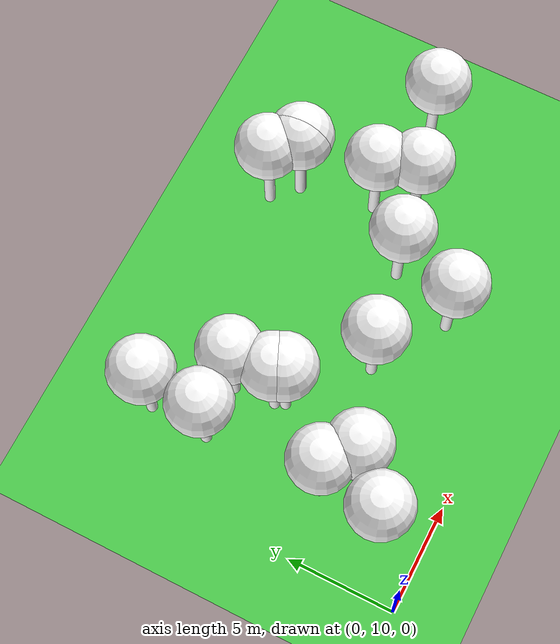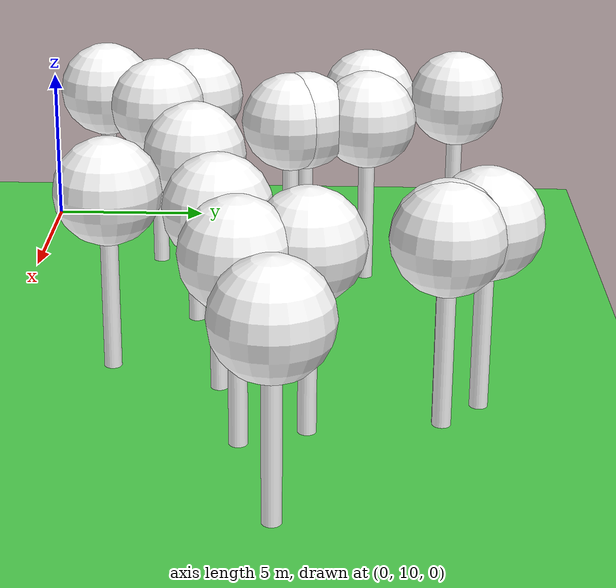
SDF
<sdf version="1.8">
 <world name="forest_world">
  <model name="tree_simple497">
   <static>1</static>
   <link name="link">
    <pose>0 0 0.1 0 -0 0</pose>
    <collision name="collision_trunk">
     <pose>0 0 2 0 -0 0</pose>
     <geometry><cylinder><radius>0.25</radius><length>4</length></cylinder></geometry>
    </collision>
    <collision name="collision_treetop">
     <pose>0 0 5.2 0 -0 0</pose>
     <geometry><sphere><radius>1.5</radius></sphere></geometry>
    </collision>
    <visual name="trunk_497">
     <pose>0 0 2 0 -0 0</pose>
     <geometry><cylinder><radius>0.25</radius><length>4</length></cylinder></geometry>
     <material>
      <ambient>0.5 0.5 0.5 1</ambient>
      <diffuse>1.0 1.0 1.0 1</diffuse>
      <specular>0.0 0.0 0.0 1</specular>
      <pbr>
       <metal>
        <albedo_map>file://textures/tree_simple_trunk.jpg</albedo_map>
        <metalness>0.0</metalness>
        <roughness>0.8</roughness>
       </metal>
      </pbr>
     </material>
    </visual>
    <visual name="treetop_497">
     <pose>0 0 5.2 0 -0 0</pose>
     <geometry><sphere><radius>1.5</radius></sphere></geometry>
     <material>
      <ambient>0.5 0.5 0.5 1</ambient>
      <diffuse>1.0 1.0 1.0 1</diffuse>
      <specular>0.0 0.0 0.0 1</specular>
      <pbr>
       <metal>
        <albedo_map>file://textures/tree_simple_treetop.jpg</albedo_map>
        <metalness>0.0</metalness>
        <roughness>0.9</roughness>
       </metal>
      </pbr>
     </material>
    </visual>
   </link>
   <pose>16.5730666381 19.0016793819 0 0 -0 0</pose>
  </model>
  <model name="tree_simple465">
   <static>1</static>
   <link name="link">
    <pose>0 0 0.1 0 -0 0</pose>
    <collision name="collision_trunk">
     <pose>0 0 2 0 -0 0</pose>
     <geometry><cylinder><radius>0.25</radius><length>4</length></cylinder></geometry>
    </collision>
    <collision name="collision_treetop">
     <pose>0 0 5.2 0 -0 0</pose>
     <geometry><sphere><radius>1.5</radius></sphere></geometry>
    </collision>
    <visual name="trunk_465">
     <pose>0 0 2 0 -0 0</pose>
     <geometry><cylinder><radius>0.25</radius><length>4</length></cylinder></geometry>
     <material>
      <ambient>0.5 0.5 0.5 1</ambient>
      <diffuse>1.0 1.0 1.0 1</diffuse>
      <specular>0.0 0.0 0.0 1</specular>
      <pbr>
       <metal>
        <albedo_map>file://textures/tree_simple_trunk.jpg</albedo_map>
        <metalness>0.0</metalness>
        <roughness>0.8</roughness>
       </metal>
      </pbr>
     </material>
    </visual>
    <visual name="treetop_465">
     <pose>0 0 5.2 0 -0 0</pose>
     <geometry><sphere><radius>1.5</radius></sphere></geometry>
     <material>
      <ambient>0.5 0.5 0.5 1</ambient>
      <diffuse>1.0 1.0 1.0 1</diffuse>
      <specular>0.0 0.0 0.0 1</specular>
      <pbr>
       <metal>
        <albedo_map>file://textures/tree_simple_treetop.jpg</albedo_map>
        <metalness>0.0</metalness>
        <roughness>0.9</roughness>
       </metal>
      </pbr>
     </material>
    </visual>
   </link>
   <pose>5.78708546562 20.6382949275 0 0 -0 0</pose>
  </model>
  <model name="tree_simple450">
   <static>1</static>
   <link name="link">
    <pose>0 0 0.1 0 -0 0</pose>
    <collision name="collision_trunk">
     <pose>0 0 2 0 -0 0</pose>
     <geometry><cylinder><radius>0.25</radius><length>4</length></cylinder></geometry>
    </collision>
    <collision name="collision_treetop">
     <pose>0 0 5.2 0 -0 0</pose>
     <geometry><sphere><radius>1.5</radius></sphere></geometry>
    </collision>
    <visual name="trunk_450">
     <pose>0 0 2 0 -0 0</pose>
     <geometry><cylinder><radius>0.25</radius><length>4</length></cylinder></geometry>
     <material>
      <ambient>0.5 0.5 0.5 1</ambient>
      <diffuse>1.0 1.0 1.0 1</diffuse>
      <specular>0.0 0.0 0.0 1</specular>
      <pbr>
       <metal>
        <albedo_map>file://textures/tree_simple_trunk.jpg</albedo_map>
        <metalness>0.0</metalness>
        <roughness>0.8</roughness>
       </metal>
      </pbr>
     </material>
    </visual>
    <visual name="treetop_450">
     <pose>0 0 5.2 0 -0 0</pose>
     <geometry><sphere><radius>1.5</radius></sphere></geometry>
     <material>
      <ambient>0.5 0.5 0.5 1</ambient>
      <diffuse>1.0 1.0 1.0 1</diffuse>
      <specular>0.0 0.0 0.0 1</specular>
      <pbr>
       <metal>
        <albedo_map>file://textures/tree_simple_treetop.jpg</albedo_map>
        <metalness>0.0</metalness>
        <roughness>0.9</roughness>
       </metal>
      </pbr>
     </material>
    </visual>
   </link>
   <pose>16.0273432372 22.5148519884 0 0 -0 0</pose>
  </model>
  <model name="tree_simple328">
   <static>1</static>
   <link name="link">
    <pose>0 0 0.1 0 -0 0</pose>
    <collision name="collision_trunk">
     <pose>0 0 2 0 -0 0</pose>
     <geometry><cylinder><radius>0.25</radius><length>4</length></cylinder></geometry>
    </collision>
    <collision name="collision_treetop">
     <pose>0 0 5.2 0 -0 0</pose>
     <geometry><sphere><radius>1.5</radius></sphere></geometry>
    </collision>
    <visual name="trunk_328">
     <pose>0 0 2 0 -0 0</pose>
     <geometry><cylinder><radius>0.25</radius><length>4</length></cylinder></geometry>
     <material>
      <ambient>0.5 0.5 0.5 1</ambient>
      <diffuse>1.0 1.0 1.0 1</diffuse>
      <specular>0.0 0.0 0.0 1</specular>
      <pbr>
       <metal>
        <albedo_map>file://textures/tree_simple_trunk.jpg</albedo_map>
        <metalness>0.0</metalness>
        <roughness>0.8</roughness>
       </metal>
      </pbr>
     </material>
    </visual>
    <visual name="treetop_328">
     <pose>0 0 5.2 0 -0 0</pose>
     <geometry><sphere><radius>1.5</radius></sphere></geometry>
     <material>
      <ambient>0.5 0.5 0.5 1</ambient>
      <diffuse>1.0 1.0 1.0 1</diffuse>
      <specular>0.0 0.0 0.0 1</specular>
      <pbr>
       <metal>
        <albedo_map>file://textures/tree_simple_treetop.jpg</albedo_map>
        <metalness>0.0</metalness>
        <roughness>0.9</roughness>
       </metal>
      </pbr>
     </material>
    </visual>
   </link>
   <pose>3.34573808519 23.5188113382 0 0 -0 0</pose>
  </model>
  <model name="tree_simple324">
   <static>1</static>
   <link name="link">
    <pose>0 0 0.1 0 -0 0</pose>
    <collision name="collision_trunk">
     <pose>0 0 2 0 -0 0</pose>
     <geometry><cylinder><radius>0.25</radius><length>4</length></cylinder></geometry>
    </collision>
    <collision name="collision_treetop">
     <pose>0 0 5.2 0 -0 0</pose>
     <geometry><sphere><radius>1.5</radius></sphere></geometry>
    </collision>
    <visual name="trunk_324">
     <pose>0 0 2 0 -0 0</pose>
     <geometry><cylinder><radius>0.25</radius><length>4</length></cylinder></geometry>
     <material>
      <ambient>0.5 0.5 0.5 1</ambient>
      <diffuse>1.0 1.0 1.0 1</diffuse>
      <specular>0.0 0.0 0.0 1</specular>
      <pbr>
       <metal>
        <albedo_map>file://textures/tree_simple_trunk.jpg</albedo_map>
        <metalness>0.0</metalness>
        <roughness>0.8</roughness>
       </metal>
      </pbr>
     </material>
    </visual>
    <visual name="treetop_324">
     <pose>0 0 5.2 0 -0 0</pose>
     <geometry><sphere><radius>1.5</radius></sphere></geometry>
     <material>
      <ambient>0.5 0.5 0.5 1</ambient>
      <diffuse>1.0 1.0 1.0 1</diffuse>
      <specular>0.0 0.0 0.0 1</specular>
      <pbr>
       <metal>
        <albedo_map>file://textures/tree_simple_treetop.jpg</albedo_map>
        <metalness>0.0</metalness>
        <roughness>0.9</roughness>
       </metal>
      </pbr>
     </material>
    </visual>
   </link>
   <pose>2.67974288493 12.1656578915 0 0 -0 0</pose>
  </model>
  <model name="tree_simple304">
   <static>1</static>
   <link name="link">
    <pose>0 0 0.1 0 -0 0</pose>
    <collision name="collision_trunk">
     <pose>0 0 2 0 -0 0</pose>
     <geometry><cylinder><radius>0.25</radius><length>4</length></cylinder></geometry>
    </collision>
    <collision name="collision_treetop">
     <pose>0 0 5.2 0 -0 0</pose>
     <geometry><sphere><radius>1.5</radius></sphere></geometry>
    </collision>
    <visual name="trunk_304">
     <pose>0 0 2 0 -0 0</pose>
     <geometry><cylinder><radius>0.25</radius><length>4</length></cylinder></geometry>
     <material>
      <ambient>0.5 0.5 0.5 1</ambient>
      <diffuse>1.0 1.0 1.0 1</diffuse>
      <specular>0.0 0.0 0.0 1</specular>
      <pbr>
       <metal>
        <albedo_map>file://textures/tree_simple_trunk.jpg</albedo_map>
        <metalness>0.0</metalness>
        <roughness>0.8</roughness>
       </metal>
      </pbr>
     </material>
    </visual>
    <visual name="treetop_304">
     <pose>0 0 5.2 0 -0 0</pose>
     <geometry><sphere><radius>1.5</radius></sphere></geometry>
     <material>
      <ambient>0.5 0.5 0.5 1</ambient>
      <diffuse>1.0 1.0 1.0 1</diffuse>
      <specular>0.0 0.0 0.0 1</specular>
      <pbr>
       <metal>
        <albedo_map>file://textures/tree_simple_treetop.jpg</albedo_map>
        <metalness>0.0</metalness>
        <roughness>0.9</roughness>
       </metal>
      </pbr>
     </material>
    </visual>
   </link>
   <pose>12.7492321523 13.4736505169 0 0 -0 0</pose>
  </model>
  <model name="tree_simple246">
   <static>1</static>
   <link name="link">
    <pose>0 0 0.1 0 -0 0</pose>
    <collision name="collision_trunk">
     <pose>0 0 2 0 -0 0</pose>
     <geometry><cylinder><radius>0.25</radius><length>4</length></cylinder></geometry>
    </collision>
    <collision name="collision_treetop">
     <pose>0 0 5.2 0 -0 0</pose>
     <geometry><sphere><radius>1.5</radius></sphere></geometry>
    </collision>
    <visual name="trunk_246">
     <pose>0 0 2 0 -0 0</pose>
     <geometry><cylinder><radius>0.25</radius><length>4</length></cylinder></geometry>
     <material>
      <ambient>0.5 0.5 0.5 1</ambient>
      <diffuse>1.0 1.0 1.0 1</diffuse>
      <specular>0.0 0.0 0.0 1</specular>
      <pbr>
       <metal>
        <albedo_map>file://textures/tree_simple_trunk.jpg</albedo_map>
        <metalness>0.0</metalness>
        <roughness>0.8</roughness>
       </metal>
      </pbr>
     </material>
    </visual>
    <visual name="treetop_246">
     <pose>0 0 5.2 0 -0 0</pose>
     <geometry><sphere><radius>1.5</radius></sphere></geometry>
     <material>
      <ambient>0.5 0.5 0.5 1</ambient>
      <diffuse>1.0 1.0 1.0 1</diffuse>
      <specular>0.0 0.0 0.0 1</specular>
      <pbr>
       <metal>
        <albedo_map>file://textures/tree_simple_treetop.jpg</albedo_map>
        <metalness>0.0</metalness>
        <roughness>0.9</roughness>
       </metal>
      </pbr>
     </material>
    </visual>
   </link>
   <pose>4.59531277399 14.0377896265 0 0 -0 0</pose>
  </model>
  <model name="tree_simple181">
   <static>1</static>
   <link name="link">
    <pose>0 0 0.1 0 -0 0</pose>
    <collision name="collision_trunk">
     <pose>0 0 2 0 -0 0</pose>
     <geometry><cylinder><radius>0.25</radius><length>4</length></cylinder></geometry>
    </collision>
    <collision name="collision_treetop">
     <pose>0 0 5.2 0 -0 0</pose>
     <geometry><sphere><radius>1.5</radius></sphere></geometry>
    </collision>
    <visual name="trunk_181">
     <pose>0 0 2 0 -0 0</pose>
     <geometry><cylinder><radius>0.25</radius><length>4</length></cylinder></geometry>
     <material>
      <ambient>0.5 0.5 0.5 1</ambient>
      <diffuse>1.0 1.0 1.0 1</diffuse>
      <specular>0.0 0.0 0.0 1</specular>
      <pbr>
       <metal>
        <albedo_map>file://textures/tree_simple_trunk.jpg</albedo_map>
        <metalness>0.0</metalness>
        <roughness>0.8</roughness>
       </metal>
      </pbr>
     </material>
    </visual>
    <visual name="treetop_181">
     <pose>0 0 5.2 0 -0 0</pose>
     <geometry><sphere><radius>1.5</radius></sphere></geometry>
     <material>
      <ambient>0.5 0.5 0.5 1</ambient>
      <diffuse>1.0 1.0 1.0 1</diffuse>
      <specular>0.0 0.0 0.0 1</specular>
      <pbr>
       <metal>
        <albedo_map>file://textures/tree_simple_treetop.jpg</albedo_map>
        <metalness>0.0</metalness>
        <roughness>0.9</roughness>
       </metal>
      </pbr>
     </material>
    </visual>
   </link>
   <pose>14.8848643659 23.5674852772 0 0 -0 0</pose>
  </model>
  <model name="tree_simple177">
   <static>1</static>
   <link name="link">
    <pose>0 0 0.1 0 -0 0</pose>
    <collision name="collision_trunk">
     <pose>0 0 2 0 -0 0</pose>
     <geometry><cylinder><radius>0.25</radius><length>4</length></cylinder></geometry>
    </collision>
    <collision name="collision_treetop">
     <pose>0 0 5.2 0 -0 0</pose>
     <geometry><sphere><radius>1.5</radius></sphere></geometry>
    </collision>
    <visual name="trunk_177">
     <pose>0 0 2 0 -0 0</pose>
     <geometry><cylinder><radius>0.25</radius><length>4</length></cylinder></geometry>
     <material>
      <ambient>0.5 0.5 0.5 1</ambient>
      <diffuse>1.0 1.0 1.0 1</diffuse>
      <specular>0.0 0.0 0.0 1</specular>
      <pbr>
       <metal>
        <albedo_map>file://textures/tree_simple_trunk.jpg</albedo_map>
        <metalness>0.0</metalness>
        <roughness>0.8</roughness>
       </metal>
      </pbr>
     </material>
    </visual>
    <visual name="treetop_177">
     <pose>0 0 5.2 0 -0 0</pose>
     <geometry><sphere><radius>1.5</radius></sphere></geometry>
     <material>
      <ambient>0.5 0.5 0.5 1</ambient>
      <diffuse>1.0 1.0 1.0 1</diffuse>
      <specular>0.0 0.0 0.0 1</specular>
      <pbr>
       <metal>
        <albedo_map>file://textures/tree_simple_treetop.jpg</albedo_map>
        <metalness>0.0</metalness>
        <roughness>0.9</roughness>
       </metal>
      </pbr>
     </material>
    </visual>
   </link>
   <pose>5.95472873547 18.7195439191 0 0 -0 0</pose>
  </model>
  <model name="tree_simple160">
   <static>1</static>
   <link name="link">
    <pose>0 0 0.1 0 -0 0</pose>
    <collision name="collision_trunk">
     <pose>0 0 2 0 -0 0</pose>
     <geometry><cylinder><radius>0.25</radius><length>4</length></cylinder></geometry>
    </collision>
    <collision name="collision_treetop">
     <pose>0 0 5.2 0 -0 0</pose>
     <geometry><sphere><radius>1.5</radius></sphere></geometry>
    </collision>
    <visual name="trunk_160">
     <pose>0 0 2 0 -0 0</pose>
     <geometry><cylinder><radius>0.25</radius><length>4</length></cylinder></geometry>
     <material>
      <ambient>0.5 0.5 0.5 1</ambient>
      <diffuse>1.0 1.0 1.0 1</diffuse>
      <specular>0.0 0.0 0.0 1</specular>
      <pbr>
       <metal>
        <albedo_map>file://textures/tree_simple_trunk.jpg</albedo_map>
        <metalness>0.0</metalness>
        <roughness>0.8</roughness>
       </metal>
      </pbr>
     </material>
    </visual>
    <visual name="treetop_160">
     <pose>0 0 5.2 0 -0 0</pose>
     <geometry><sphere><radius>1.5</radius></sphere></geometry>
     <material>
      <ambient>0.5 0.5 0.5 1</ambient>
      <diffuse>1.0 1.0 1.0 1</diffuse>
      <specular>0.0 0.0 0.0 1</specular>
      <pbr>
       <metal>
        <albedo_map>file://textures/tree_simple_treetop.jpg</albedo_map>
        <metalness>0.0</metalness>
        <roughness>0.9</roughness>
       </metal>
      </pbr>
     </material>
    </visual>
   </link>
   <pose>3.31258380175 15.1525774981 0 0 -0 0</pose>
  </model>
  <model name="tree_simple98">
   <static>1</static>
   <link name="link">
    <pose>0 0 0.1 0 -0 0</pose>
    <collision name="collision_trunk">
     <pose>0 0 2 0 -0 0</pose>
     <geometry><cylinder><radius>0.25</radius><length>4</length></cylinder></geometry>
    </collision>
    <collision name="collision_treetop">
     <pose>0 0 5.2 0 -0 0</pose>
     <geometry><sphere><radius>1.5</radius></sphere></geometry>
    </collision>
    <visual name="trunk_98">
     <pose>0 0 2 0 -0 0</pose>
     <geometry><cylinder><radius>0.25</radius><length>4</length></cylinder></geometry>
     <material>
      <ambient>0.5 0.5 0.5 1</ambient>
      <diffuse>1.0 1.0 1.0 1</diffuse>
      <specular>0.0 0.0 0.0 1</specular>
      <pbr>
       <metal>
        <albedo_map>file://textures/tree_simple_trunk.jpg</albedo_map>
        <metalness>0.0</metalness>
        <roughness>0.8</roughness>
       </metal>
      </pbr>
     </material>
    </visual>
    <visual name="treetop_98">
     <pose>0 0 5.2 0 -0 0</pose>
     <geometry><sphere><radius>1.5</radius></sphere></geometry>
     <material>
      <ambient>0.5 0.5 0.5 1</ambient>
      <diffuse>1.0 1.0 1.0 1</diffuse>
      <specular>0.0 0.0 0.0 1</specular>
      <pbr>
       <metal>
        <albedo_map>file://textures/tree_simple_treetop.jpg</albedo_map>
        <metalness>0.0</metalness>
        <roughness>0.9</roughness>
       </metal>
      </pbr>
     </material>
    </visual>
   </link>
   <pose>14.024693035 16.5700471203 0 0 -0 0</pose>
  </model>
  <model name="tree_simple95">
   <static>1</static>
   <link name="link">
    <pose>0 0 0.1 0 -0 0</pose>
    <collision name="collision_trunk">
     <pose>0 0 2 0 -0 0</pose>
     <geometry><cylinder><radius>0.25</radius><length>4</length></cylinder></geometry>
    </collision>
    <collision name="collision_treetop">
     <pose>0 0 5.2 0 -0 0</pose>
     <geometry><sphere><radius>1.5</radius></sphere></geometry>
    </collision>
    <visual name="trunk_95">
     <pose>0 0 2 0 -0 0</pose>
     <geometry><cylinder><radius>0.25</radius><length>4</length></cylinder></geometry>
     <material>
      <ambient>0.5 0.5 0.5 1</ambient>
      <diffuse>1.0 1.0 1.0 1</diffuse>
      <specular>0.0 0.0 0.0 1</specular>
      <pbr>
       <metal>
        <albedo_map>file://textures/tree_simple_trunk.jpg</albedo_map>
        <metalness>0.0</metalness>
        <roughness>0.8</roughness>
       </metal>
      </pbr>
     </material>
    </visual>
    <visual name="treetop_95">
     <pose>0 0 5.2 0 -0 0</pose>
     <geometry><sphere><radius>1.5</radius></sphere></geometry>
     <material>
      <ambient>0.5 0.5 0.5 1</ambient>
      <diffuse>1.0 1.0 1.0 1</diffuse>
      <specular>0.0 0.0 0.0 1</specular>
      <pbr>
       <metal>
        <albedo_map>file://textures/tree_simple_treetop.jpg</albedo_map>
        <metalness>0.0</metalness>
        <roughness>0.9</roughness>
       </metal>
      </pbr>
     </material>
    </visual>
   </link>
   <pose>3.20302207312 20.7020436907 0 0 -0 0</pose>
  </model>
  <model name="tree_simple94">
   <static>1</static>
   <link name="link">
    <pose>0 0 0.1 0 -0 0</pose>
    <collision name="collision_trunk">
     <pose>0 0 2 0 -0 0</pose>
     <geometry><cylinder><radius>0.25</radius><length>4</length></cylinder></geometry>
    </collision>
    <collision name="collision_treetop">
     <pose>0 0 5.2 0 -0 0</pose>
     <geometry><sphere><radius>1.5</radius></sphere></geometry>
    </collision>
    <visual name="trunk_94">
     <pose>0 0 2 0 -0 0</pose>
     <geometry><cylinder><radius>0.25</radius><length>4</length></cylinder></geometry>
     <material>
      <ambient>0.5 0.5 0.5 1</ambient>
      <diffuse>1.0 1.0 1.0 1</diffuse>
      <specular>0.0 0.0 0.0 1</specular>
      <pbr>
       <metal>
        <albedo_map>file://textures/tree_simple_trunk.jpg</albedo_map>
        <metalness>0.0</metalness>
        <roughness>0.8</roughness>
       </metal>
      </pbr>
     </material>
    </visual>
    <visual name="treetop_94">
     <pose>0 0 5.2 0 -0 0</pose>
     <geometry><sphere><radius>1.5</radius></sphere></geometry>
     <material>
      <ambient>0.5 0.5 0.5 1</ambient>
      <diffuse>1.0 1.0 1.0 1</diffuse>
      <specular>0.0 0.0 0.0 1</specular>
      <pbr>
       <metal>
        <albedo_map>file://textures/tree_simple_treetop.jpg</albedo_map>
        <metalness>0.0</metalness>
        <roughness>0.9</roughness>
       </metal>
      </pbr>
     </material>
    </visual>
   </link>
   <pose>6.14879298853 18.2743585392 0 0 -0 0</pose>
  </model>
  <model name="tree_simple85">
   <static>1</static>
   <link name="link">
    <pose>0 0 0.1 0 -0 0</pose>
    <collision name="collision_trunk">
     <pose>0 0 2 0 -0 0</pose>
     <geometry><cylinder><radius>0.25</radius><length>4</length></cylinder></geometry>
    </collision>
    <collision name="collision_treetop">
     <pose>0 0 5.2 0 -0 0</pose>
     <geometry><sphere><radius>1.5</radius></sphere></geometry>
    </collision>
    <visual name="trunk_85">
     <pose>0 0 2 0 -0 0</pose>
     <geometry><cylinder><radius>0.25</radius><length>4</length></cylinder></geometry>
     <material>
      <ambient>0.5 0.5 0.5 1</ambient>
      <diffuse>1.0 1.0 1.0 1</diffuse>
      <specular>0.0 0.0 0.0 1</specular>
      <pbr>
       <metal>
        <albedo_map>file://textures/tree_simple_trunk.jpg</albedo_map>
        <metalness>0.0</metalness>
        <roughness>0.8</roughness>
       </metal>
      </pbr>
     </material>
    </visual>
    <visual name="treetop_85">
     <pose>0 0 5.2 0 -0 0</pose>
     <geometry><sphere><radius>1.5</radius></sphere></geometry>
     <material>
      <ambient>0.5 0.5 0.5 1</ambient>
      <diffuse>1.0 1.0 1.0 1</diffuse>
      <specular>0.0 0.0 0.0 1</specular>
      <pbr>
       <metal>
        <albedo_map>file://textures/tree_simple_treetop.jpg</albedo_map>
        <metalness>0.0</metalness>
        <roughness>0.9</roughness>
       </metal>
      </pbr>
     </material>
    </visual>
   </link>
   <pose>9.34911088968 15.5834050792 0 0 -0 0</pose>
  </model>
  <model name="tree_simple84">
   <static>1</static>
   <link name="link">
    <pose>0 0 0.1 0 -0 0</pose>
    <collision name="collision_trunk">
     <pose>0 0 2 0 -0 0</pose>
     <geometry><cylinder><radius>0.25</radius><length>4</length></cylinder></geometry>
    </collision>
    <collision name="collision_treetop">
     <pose>0 0 5.2 0 -0 0</pose>
     <geometry><sphere><radius>1.5</radius></sphere></geometry>
    </collision>
    <visual name="trunk_84">
     <pose>0 0 2 0 -0 0</pose>
     <geometry><cylinder><radius>0.25</radius><length>4</length></cylinder></geometry>
     <material>
      <ambient>0.5 0.5 0.5 1</ambient>
      <diffuse>1.0 1.0 1.0 1</diffuse>
      <specular>0.0 0.0 0.0 1</specular>
      <pbr>
       <metal>
        <albedo_map>file://textures/tree_simple_trunk.jpg</albedo_map>
        <metalness>0.0</metalness>
        <roughness>0.8</roughness>
       </metal>
      </pbr>
     </material>
    </visual>
    <visual name="treetop_84">
     <pose>0 0 5.2 0 -0 0</pose>
     <geometry><sphere><radius>1.5</radius></sphere></geometry>
     <material>
      <ambient>0.5 0.5 0.5 1</ambient>
      <diffuse>1.0 1.0 1.0 1</diffuse>
      <specular>0.0 0.0 0.0 1</specular>
      <pbr>
       <metal>
        <albedo_map>file://textures/tree_simple_treetop.jpg</albedo_map>
        <metalness>0.0</metalness>
        <roughness>0.9</roughness>
       </metal>
      </pbr>
     </material>
    </visual>
   </link>
   <pose>17.2995655595 17.2600237407 0 0 -0 0</pose>
  </model>
  <model name="tree_simple49">
   <static>1</static>
   <link name="link">
    <pose>0 0 0.1 0 -0 0</pose>
    <collision name="collision_trunk">
     <pose>0 0 2 0 -0 0</pose>
     <geometry><cylinder><radius>0.25</radius><length>4</length></cylinder></geometry>
    </collision>
    <collision name="collision_treetop">
     <pose>0 0 5.2 0 -0 0</pose>
     <geometry><sphere><radius>1.5</radius></sphere></geometry>
    </collision>
    <visual name="trunk_49">
     <pose>0 0 2 0 -0 0</pose>
     <geometry><cylinder><radius>0.25</radius><length>4</length></cylinder></geometry>
     <material>
      <ambient>0.5 0.5 0.5 1</ambient>
      <diffuse>1.0 1.0 1.0 1</diffuse>
      <specular>0.0 0.0 0.0 1</specular>
      <pbr>
       <metal>
        <albedo_map>file://textures/tree_simple_trunk.jpg</albedo_map>
        <metalness>0.0</metalness>
        <roughness>0.8</roughness>
       </metal>
      </pbr>
     </material>
    </visual>
    <visual name="treetop_49">
     <pose>0 0 5.2 0 -0 0</pose>
     <geometry><sphere><radius>1.5</radius></sphere></geometry>
     <material>
      <ambient>0.5 0.5 0.5 1</ambient>
      <diffuse>1.0 1.0 1.0 1</diffuse>
      <specular>0.0 0.0 0.0 1</specular>
      <pbr>
       <metal>
        <albedo_map>file://textures/tree_simple_treetop.jpg</albedo_map>
        <metalness>0.0</metalness>
        <roughness>0.9</roughness>
       </metal>
      </pbr>
     </material>
    </visual>
   </link>
   <pose>15.9239262664 22.5111435722 0 0 -0 0</pose>
  </model>
  <model name="tree_simple20">
   <static>1</static>
   <link name="link">
    <pose>0 0 0.1 0 -0 0</pose>
    <collision name="collision_trunk">
     <pose>0 0 2 0 -0 0</pose>
     <geometry><cylinder><radius>0.25</radius><length>4</length></cylinder></geometry>
    </collision>
    <collision name="collision_treetop">
     <pose>0 0 5.2 0 -0 0</pose>
     <geometry><sphere><radius>1.5</radius></sphere></geometry>
    </collision>
    <visual name="trunk_20">
     <pose>0 0 2 0 -0 0</pose>
     <geometry><cylinder><radius>0.25</radius><length>4</length></cylinder></geometry>
     <material>
      <ambient>0.5 0.5 0.5 1</ambient>
      <diffuse>1.0 1.0 1.0 1</diffuse>
      <specular>0.0 0.0 0.0 1</specular>
      <pbr>
       <metal>
        <albedo_map>file://textures/tree_simple_trunk.jpg</albedo_map>
        <metalness>0.0</metalness>
        <roughness>0.8</roughness>
       </metal>
      </pbr>
     </material>
    </visual>
    <visual name="treetop_20">
     <pose>0 0 5.2 0 -0 0</pose>
     <geometry><sphere><radius>1.5</radius></sphere></geometry>
     <material>
      <ambient>0.5 0.5 0.5 1</ambient>
      <diffuse>1.0 1.0 1.0 1</diffuse>
      <specular>0.0 0.0 0.0 1</specular>
      <pbr>
       <metal>
        <albedo_map>file://textures/tree_simple_treetop.jpg</albedo_map>
        <metalness>0.0</metalness>
        <roughness>0.9</roughness>
       </metal>
      </pbr>
     </material>
    </visual>
   </link>
   <pose>21.1901136625 18.261917312 0 0 -0 0</pose>
  </model>
  <model name="ground_plane">
   <static>true</static>
   <link name="link">
    <collision name="collision">
     <geometry><plane><normal>0 0 1</normal><size>250 250</size></plane></geometry>
     <surface><friction><ode><mu>1</mu><mu2>1</mu2></ode></friction></surface>
    </collision>
    <visual name="grass">
     <cast_shadows>false</cast_shadows>
     <geometry><mesh><uri>file://textures/grass_plane.dae</uri><scale>1 1 1</scale></mesh></geometry>
     <material>
      <ambient>0.2 0.6 0.2 1</ambient>
      <diffuse>0.3 0.8 0.3 1</diffuse>
      <specular>0.1 0.1 0.1 1</specular>
      <pbr>
       <metal>
        <albedo_map>file://textures/grass_seamless.jpg</albedo_map>
        <metalness>0.0</metalness>
        <roughness>0.9</roughness>
       </metal>
      </pbr>
     </material>
    </visual>
   </link>
  </model>
 </world>
</sdf>
